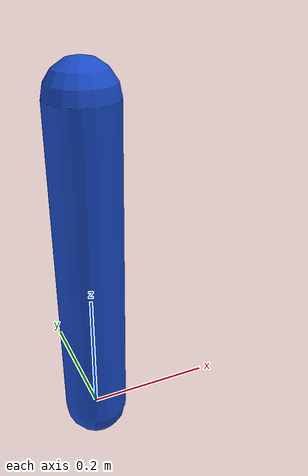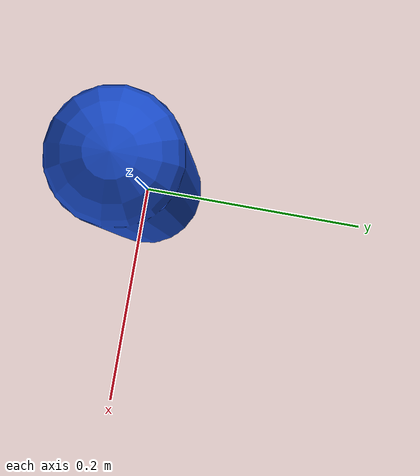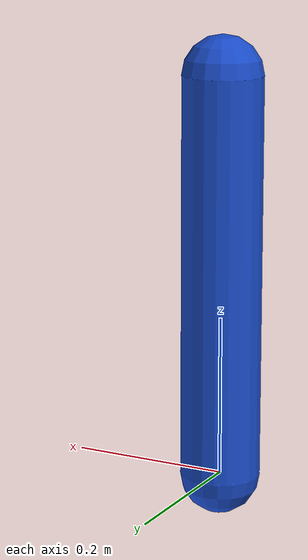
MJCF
<mujoco model="simple_pendulum">
  <option gravity="0 0 -9.81" timestep="0.02"/>

  <worldbody>
    <body name="base" pos="0 0 0">
      <body name="pendulum" pos="0 0 0.5">

        <joint name="hinge" type="hinge" axis="0 1 0" limited="false" range="-180 180" damping="0.1"/>
        <geom type="capsule" fromto="0 0 0 0 0 -0.5" size="0.05" rgba="0.1 0.3 0.8 1"/>

        <site name="pendulum_head" pos="0 0 -0.5" rgba="0 0.5 0.5 1"/>

        <!-- Khối lượng và khối tâm của pendulum -->
        <inertial pos="0 0 -0.25" mass="1.0" diaginertia="0.01 0.01 0.001"/>

      </body>
    </body>
  </worldbody>

  <actuator>
    <!-- Điều khiển moment lên khớp hinge -->
    <motor name="pendulum_motor" joint="hinge" ctrlrange="-10 10" ctrllimited="true"/>
  </actuator>

  <sensor>
    <jointpos joint="hinge"/>
    <jointvel joint="hinge"/>
    <jointactuatorfrc joint="hinge"/>
  </sensor>
</mujoco>
